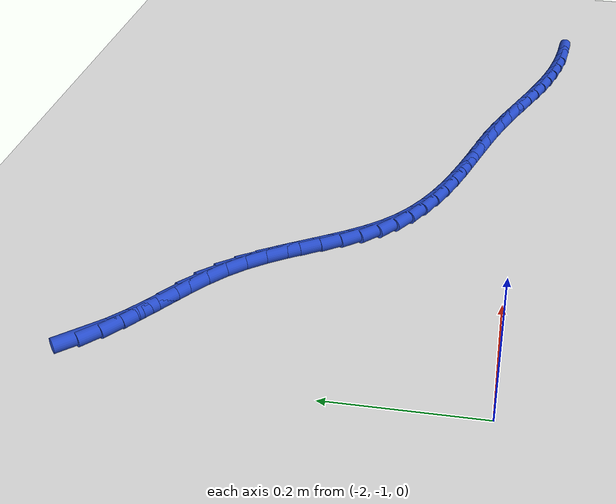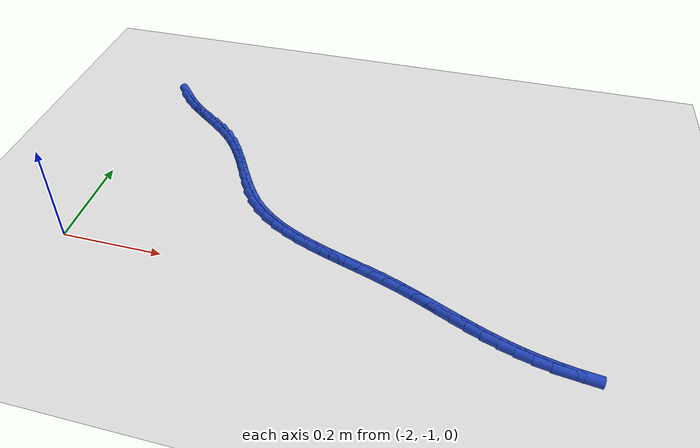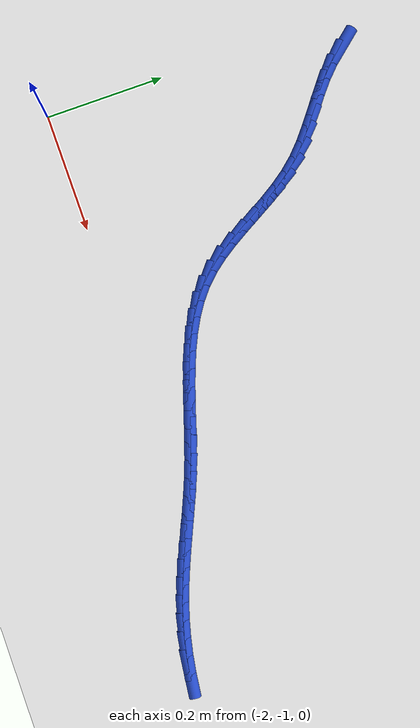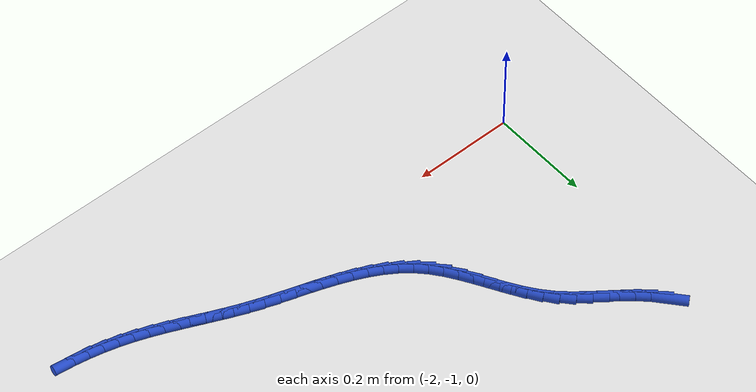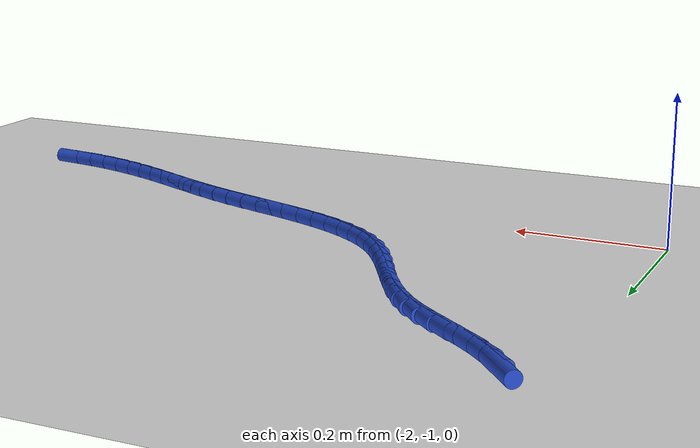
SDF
<sdf version="1.6">
 <world name="default">
  <model name="ground_plane">
   <static>1</static>
   <link name="link">
    <collision name="collision">
     <geometry><plane><normal>0 0 1</normal><size>100 100</size></plane></geometry>
     <surface><friction><ode><mu>100</mu><mu2>50</mu2></ode></friction></surface>
    </collision>
    <visual name="visual">
     <cast_shadows>0</cast_shadows>
     <geometry><plane><normal>0 0 1</normal><size>100 100</size></plane></geometry>
     <material>
      <script><uri>file://media/materials/scripts/gazebo.material</uri><name>Gazebo/WhiteGlow</name></script>
     </material>
    </visual>
   </link>
  </model>
  <model name="line">
   <link name="link_134">
    <pose>-1.945523876020781 -0.5044399242374739 0.01 0 1.57 -0.8649098657939092</pose>
    <collision name="collision">
     <geometry><cylinder><radius>0.01</radius><length>0.08</length></cylinder></geometry>
    </collision>
    <visual name="visual">
     <material>
      <script><name>Gazebo/Blue</name><uri>file://media/materials/scripts/gazebo.material</uri></script>
     </material>
     <geometry><cylinder><radius>0.01</radius><length>0.08</length></cylinder></geometry>
    </visual>
   </link>
   <link name="link_135">
    <pose>-1.9274065273554222 -0.5256944082384363 0.01 0 1.57 -0.7651148735351089</pose>
    <collision name="collision">
     <geometry><cylinder><radius>0.01</radius><length>0.08</length></cylinder></geometry>
    </collision>
    <visual name="visual">
     <material>
      <script><name>Gazebo/Blue</name><uri>file://media/materials/scripts/gazebo.material</uri></script>
     </material>
     <geometry><cylinder><radius>0.01</radius><length>0.08</length></cylinder></geometry>
    </visual>
   </link>
   <link name="link_136">
    <pose>-1.907104829177108 -0.5451888000728007 0.01 0 1.57 -0.6914414769259143</pose>
    <collision name="collision">
     <geometry><cylinder><radius>0.01</radius><length>0.08</length></cylinder></geometry>
    </collision>
    <visual name="visual">
     <material>
      <script><name>Gazebo/Blue</name><uri>file://media/materials/scripts/gazebo.material</uri></script>
     </material>
     <geometry><cylinder><radius>0.01</radius><length>0.08</length></cylinder></geometry>
    </visual>
   </link>
   <link name="link_137">
    <pose>-1.8851389407791896 -0.5633713360268057 0.01 0 1.57 -0.6546145033927468</pose>
    <collision name="collision">
     <geometry><cylinder><radius>0.01</radius><length>0.08</length></cylinder></geometry>
    </collision>
    <visual name="visual">
     <material>
      <script><name>Gazebo/Blue</name><uri>file://media/materials/scripts/gazebo.material</uri></script>
     </material>
     <geometry><cylinder><radius>0.01</radius><length>0.08</length></cylinder></geometry>
    </visual>
   </link>
   <link name="link_138">
    <pose>-1.862277465319502 -0.580917778102049 0.01 0 1.57 -0.653068136857843</pose>
    <collision name="collision">
     <geometry><cylinder><radius>0.01</radius><length>0.08</length></cylinder></geometry>
    </collision>
    <visual name="visual">
     <material>
      <script><name>Gazebo/Blue</name><uri>file://media/materials/scripts/gazebo.material</uri></script>
     </material>
     <geometry><cylinder><radius>0.01</radius><length>0.08</length></cylinder></geometry>
    </visual>
   </link>
   <link name="link_139">
    <pose>-1.8392898216489681 -0.5985046353145671 0.01 0 1.57 -0.6863191443784399</pose>
    <collision name="collision">
     <geometry><cylinder><radius>0.01</radius><length>0.08</length></cylinder></geometry>
    </collision>
    <visual name="visual">
     <material>
      <script><name>Gazebo/Blue</name><uri>file://media/materials/scripts/gazebo.material</uri></script>
     </material>
     <geometry><cylinder><radius>0.01</radius><length>0.08</length></cylinder></geometry>
    </visual>
   </link>
   <link name="link_140">
    <pose>-1.8169454286185107 -0.6168084166803957 0.01 0 1.57 -0.7550225406404976</pose>
    <collision name="collision">
     <geometry><cylinder><radius>0.01</radius><length>0.08</length></cylinder></geometry>
    </collision>
    <visual name="visual">
     <material>
      <script><name>Gazebo/Blue</name><uri>file://media/materials/scripts/gazebo.material</uri></script>
     </material>
     <geometry><cylinder><radius>0.01</radius><length>0.08</length></cylinder></geometry>
    </visual>
   </link>
   <link name="link_141">
    <pose>-1.7960137050790541 -0.6365056312155698 0.01 0 1.57 -0.855044494336317</pose>
    <collision name="collision">
     <geometry><cylinder><radius>0.01</radius><length>0.08</length></cylinder></geometry>
    </collision>
    <visual name="visual">
     <material>
      <script><name>Gazebo/Blue</name><uri>file://media/materials/scripts/gazebo.material</uri></script>
     </material>
     <geometry><cylinder><radius>0.01</radius><length>0.08</length></cylinder></geometry>
    </visual>
   </link>
   <link name="link_142">
    <pose>-1.7771659714973034 -0.6581801640192708 0.01 0 1.57 -0.9460924358139133</pose>
    <collision name="collision">
     <geometry><cylinder><radius>0.01</radius><length>0.08</length></cylinder></geometry>
    </collision>
    <visual name="visual">
     <material>
      <script><name>Gazebo/Blue</name><uri>file://media/materials/scripts/gazebo.material</uri></script>
     </material>
     <geometry><cylinder><radius>0.01</radius><length>0.08</length></cylinder></geometry>
    </visual>
   </link>
   <link name="link_143">
    <pose>-1.7602510966978318 -0.6816393461921029 0.01 0 1.57 -1.008445409772859</pose>
    <collision name="collision">
     <geometry><cylinder><radius>0.01</radius><length>0.08</length></cylinder></geometry>
    </collision>
    <visual name="visual">
     <material>
      <script><name>Gazebo/Blue</name><uri>file://media/materials/scripts/gazebo.material</uri></script>
     </material>
     <geometry><cylinder><radius>0.01</radius><length>0.08</length></cylinder></geometry>
    </visual>
   </link>
   <link name="link_144">
    <pose>-1.744707412341528 -0.706302882061628 0.01 0 1.57 -1.0430832219047415</pose>
    <collision name="collision">
     <geometry><cylinder><radius>0.01</radius><length>0.08</length></cylinder></geometry>
    </collision>
    <visual name="visual">
     <material>
      <script><name>Gazebo/Blue</name><uri>file://media/materials/scripts/gazebo.material</uri></script>
     </material>
     <geometry><cylinder><radius>0.01</radius><length>0.08</length></cylinder></geometry>
    </visual>
   </link>
   <link name="link_145">
    <pose>-1.729970224934355 -0.7315876196219331 0.01 0 1.57 -1.05089975401515</pose>
    <collision name="collision">
     <geometry><cylinder><radius>0.01</radius><length>0.08</length></cylinder></geometry>
    </collision>
    <visual name="visual">
     <material>
      <script><name>Gazebo/Blue</name><uri>file://media/materials/scripts/gazebo.material</uri></script>
     </material>
     <geometry><cylinder><radius>0.01</radius><length>0.08</length></cylinder></geometry>
    </visual>
   </link>
   <link name="link_146">
    <pose>-1.7154748409822733 -0.7569104068671083 0.01 0 1.57 -1.03181249238026</pose>
    <collision name="collision">
     <geometry><cylinder><radius>0.01</radius><length>0.08</length></cylinder></geometry>
    </collision>
    <visual name="visual">
     <material>
      <script><name>Gazebo/Blue</name><uri>file://media/materials/scripts/gazebo.material</uri></script>
     </material>
     <geometry><cylinder><radius>0.01</radius><length>0.08</length></cylinder></geometry>
    </visual>
   </link>
   <link name="link_147">
    <pose>-1.7006565669912457 -0.7816880917912419 0.01 0 1.57 -0.9845648098110397</pose>
    <collision name="collision">
     <geometry><cylinder><radius>0.01</radius><length>0.08</length></cylinder></geometry>
    </collision>
    <visual name="visual">
     <material>
      <script><name>Gazebo/Blue</name><uri>file://media/materials/scripts/gazebo.material</uri></script>
     </material>
     <geometry><cylinder><radius>0.01</radius><length>0.08</length></cylinder></geometry>
    </visual>
   </link>
   <link name="link_148">
    <pose>-1.6849507094672336 -0.8053375223884236 0.01 0 1.57 -0.9070542403104638</pose>
    <collision name="collision">
     <geometry><cylinder><radius>0.01</radius><length>0.08</length></cylinder></geometry>
    </collision>
    <visual name="visual">
     <material>
      <script><name>Gazebo/Blue</name><uri>file://media/materials/scripts/gazebo.material</uri></script>
     </material>
     <geometry><cylinder><radius>0.01</radius><length>0.08</length></cylinder></geometry>
    </visual>
   </link>
   <link name="link_149">
    <pose>-1.6677925749161995 -0.8272755466527412 0.01 0 1.57 -0.7987489031500234</pose>
    <collision name="collision">
     <geometry><cylinder><radius>0.01</radius><length>0.08</length></cylinder></geometry>
    </collision>
    <visual name="visual">
     <material>
      <script><name>Gazebo/Blue</name><uri>file://media/materials/scripts/gazebo.material</uri></script>
     </material>
     <geometry><cylinder><radius>0.01</radius><length>0.08</length></cylinder></geometry>
    </visual>
   </link>
   <link name="link_150">
    <pose>-1.6486416611386134 -0.8469447687568233 0.01 0 1.57 -0.6831744442015925</pose>
    <collision name="collision">
     <geometry><cylinder><radius>0.01</radius><length>0.08</length></cylinder></geometry>
    </collision>
    <visual name="visual">
     <material>
      <script><name>Gazebo/Blue</name><uri>file://media/materials/scripts/gazebo.material</uri></script>
     </material>
     <geometry><cylinder><radius>0.01</radius><length>0.08</length></cylinder></geometry>
    </visual>
   </link>
   <link name="link_151">
    <pose>-1.627386659851505 -0.8642447504428619 0.01 0 1.57 -0.5826330720781444</pose>
    <collision name="collision">
     <geometry><cylinder><radius>0.01</radius><length>0.08</length></cylinder></geometry>
    </collision>
    <visual name="visual">
     <material>
      <script><name>Gazebo/Blue</name><uri>file://media/materials/scripts/gazebo.material</uri></script>
     </material>
     <geometry><cylinder><radius>0.01</radius><length>0.08</length></cylinder></geometry>
    </visual>
   </link>
   <link name="link_152">
    <pose>-1.6042848112406891 -0.8794674425481954 0.01 0 1.57 -0.4989895952894923</pose>
    <collision name="collision">
     <geometry><cylinder><radius>0.01</radius><length>0.08</length></cylinder></geometry>
    </collision>
    <visual name="visual">
     <material>
      <script><name>Gazebo/Blue</name><uri>file://media/materials/scripts/gazebo.material</uri></script>
     </material>
     <geometry><cylinder><radius>0.01</radius><length>0.08</length></cylinder></geometry>
    </visual>
   </link>
   <link name="link_153">
    <pose>-1.5796053293930776 -0.892917544377775 0.01 0 1.57 -0.4320205388586078</pose>
    <collision name="collision">
     <geometry><cylinder><radius>0.01</radius><length>0.08</length></cylinder></geometry>
    </collision>
    <visual name="visual">
     <material>
      <script><name>Gazebo/Blue</name><uri>file://media/materials/scripts/gazebo.material</uri></script>
     </material>
     <geometry><cylinder><radius>0.01</radius><length>0.08</length></cylinder></geometry>
    </visual>
   </link>
   <link name="link_154">
    <pose>-1.553617428395586 -0.9048997552365514 0.01 0 1.57 -0.3807671598649935</pose>
    <collision name="collision">
     <geometry><cylinder><radius>0.01</radius><length>0.08</length></cylinder></geometry>
    </collision>
    <visual name="visual">
     <material>
      <script><name>Gazebo/Blue</name><uri>file://media/materials/scripts/gazebo.material</uri></script>
     </material>
     <geometry><cylinder><radius>0.01</radius><length>0.08</length></cylinder></geometry>
    </visual>
   </link>
   <link name="link_155">
    <pose>-1.5265903223351285 -0.9157187744294761 0.01 0 1.57 -0.34407617342270724</pose>
    <collision name="collision">
     <geometry><cylinder><radius>0.01</radius><length>0.08</length></cylinder></geometry>
    </collision>
    <visual name="visual">
     <material>
      <script><name>Gazebo/Blue</name><uri>file://media/materials/scripts/gazebo.material</uri></script>
     </material>
     <geometry><cylinder><radius>0.01</radius><length>0.08</length></cylinder></geometry>
    </visual>
   </link>
   <link name="link_156">
    <pose>-1.4987932252986174 -0.9256793012615002 0.01 0 1.57 -0.32092688221206833</pose>
    <collision name="collision">
     <geometry><cylinder><radius>0.01</radius><length>0.08</length></cylinder></geometry>
    </collision>
    <visual name="visual">
     <material>
      <script><name>Gazebo/Blue</name><uri>file://media/materials/scripts/gazebo.material</uri></script>
     </material>
     <geometry><cylinder><radius>0.01</radius><length>0.08</length></cylinder></geometry>
    </visual>
   </link>
   <link name="link_157">
    <pose>-1.4704953513729655 -0.9350860350375743 0.01 0 1.57 -0.3105999684093135</pose>
    <collision name="collision">
     <geometry><cylinder><radius>0.01</radius><length>0.08</length></cylinder></geometry>
    </collision>
    <visual name="visual">
     <material>
      <script><name>Gazebo/Blue</name><uri>file://media/materials/scripts/gazebo.material</uri></script>
     </material>
     <geometry><cylinder><radius>0.01</radius><length>0.08</length></cylinder></geometry>
    </visual>
   </link>
   <link name="link_158">
    <pose>-1.4419659146450892 -0.9442436750626501 0.01 0 1.57 -0.3127523677853453</pose>
    <collision name="collision">
     <geometry><cylinder><radius>0.01</radius><length>0.08</length></cylinder></geometry>
    </collision>
    <visual name="visual">
     <material>
      <script><name>Gazebo/Blue</name><uri>file://media/materials/scripts/gazebo.material</uri></script>
     </material>
     <geometry><cylinder><radius>0.01</radius><length>0.08</length></cylinder></geometry>
    </visual>
   </link>
   <link name="link_159">
    <pose>-1.4134741292019002 -0.9534569206416778 0.01 0 1.57 -0.3274419925402473</pose>
    <collision name="collision">
     <geometry><cylinder><radius>0.01</radius><length>0.08</length></cylinder></geometry>
    </collision>
    <visual name="visual">
     <material>
      <script><name>Gazebo/Blue</name><uri>file://media/materials/scripts/gazebo.material</uri></script>
     </material>
     <geometry><cylinder><radius>0.01</radius><length>0.08</length></cylinder></geometry>
    </visual>
   </link>
   <link name="link_160">
    <pose>-1.385289209130313 -0.963030471079609 0.01 0 1.57 -0.3548665509379763</pose>
    <collision name="collision">
     <geometry><cylinder><radius>0.01</radius><length>0.08</length></cylinder></geometry>
    </collision>
    <visual name="visual">
     <material>
      <script><name>Gazebo/Blue</name><uri>file://media/materials/scripts/gazebo.material</uri></script>
     </material>
     <geometry><cylinder><radius>0.01</radius><length>0.08</length></cylinder></geometry>
    </visual>
   </link>
   <link name="link_161">
    <pose>-1.3576754937362965 -0.9732628258630985 0.01 0 1.57 -0.3857728984942216</pose>
    <collision name="collision">
     <geometry><cylinder><radius>0.01</radius><length>0.08</length></cylinder></geometry>
    </collision>
    <visual name="visual">
     <material>
      <script><name>Gazebo/Blue</name><uri>file://media/materials/scripts/gazebo.material</uri></script>
     </material>
     <geometry><cylinder><radius>0.01</radius><length>0.08</length></cylinder></geometry>
    </visual>
   </link>
   <link name="link_162">
    <pose>-1.3307099190185931 -0.9842141421889361 0.01 0 1.57 -0.40720604581496045</pose>
    <collision name="collision">
     <geometry><cylinder><radius>0.01</radius><length>0.08</length></cylinder></geometry>
    </collision>
    <visual name="visual">
     <material>
      <script><name>Gazebo/Blue</name><uri>file://media/materials/scripts/gazebo.material</uri></script>
     </material>
     <geometry><cylinder><radius>0.01</radius><length>0.08</length></cylinder></geometry>
    </visual>
   </link>
   <link name="link_163">
    <pose>-1.3042271875893015 -0.9956365012604328 0.01 0 1.57 -0.4178713662107583</pose>
    <collision name="collision">
     <geometry><cylinder><radius>0.01</radius><length>0.08</length></cylinder></geometry>
    </collision>
    <visual name="visual">
     <material>
      <script><name>Gazebo/Blue</name><uri>file://media/materials/scripts/gazebo.material</uri></script>
     </material>
     <geometry><cylinder><radius>0.01</radius><length>0.08</length></cylinder></geometry>
    </visual>
   </link>
   <link name="link_164">
    <pose>-1.2780459343535877 -1.007261549134266 0.01 0 1.57 -0.41747602100286546</pose>
    <collision name="collision">
     <geometry><cylinder><radius>0.01</radius><length>0.08</length></cylinder></geometry>
    </collision>
    <visual name="visual">
     <material>
      <script><name>Gazebo/Blue</name><uri>file://media/materials/scripts/gazebo.material</uri></script>
     </material>
     <geometry><cylinder><radius>0.01</radius><length>0.08</length></cylinder></geometry>
    </visual>
   </link>
   <link name="link_165">
    <pose>-1.2519847942166193 -1.0188209318671149 0.01 0 1.57 -0.40586332057265667</pose>
    <collision name="collision">
     <geometry><cylinder><radius>0.01</radius><length>0.08</length></cylinder></geometry>
    </collision>
    <visual name="visual">
     <material>
      <script><name>Gazebo/Blue</name><uri>file://media/materials/scripts/gazebo.material</uri></script>
     </material>
     <geometry><cylinder><radius>0.01</radius><length>0.08</length></cylinder></geometry>
    </visual>
   </link>
   <link name="link_166">
    <pose>-1.225862402083563 -1.0300462955156573 0.01 0 1.57 -0.3830211171766226</pose>
    <collision name="collision">
     <geometry><cylinder><radius>0.01</radius><length>0.08</length></cylinder></geometry>
    </collision>
    <visual name="visual">
     <material>
      <script><name>Gazebo/Blue</name><uri>file://media/materials/scripts/gazebo.material</uri></script>
     </material>
     <geometry><cylinder><radius>0.01</radius><length>0.08</length></cylinder></geometry>
    </visual>
   </link>
   <link name="link_167">
    <pose>-1.1994973928595871 -1.0406692861365707 0.01 0 1.57 -0.34912742790801227</pose>
    <collision name="collision">
     <geometry><cylinder><radius>0.01</radius><length>0.08</length></cylinder></geometry>
    </collision>
    <visual name="visual">
     <material>
      <script><name>Gazebo/Blue</name><uri>file://media/materials/scripts/gazebo.material</uri></script>
     </material>
     <geometry><cylinder><radius>0.01</radius><length>0.08</length></cylinder></geometry>
    </visual>
   </link>
   <link name="link_168">
    <pose>-1.1727084014498577 -1.0504215497865341 0.01 0 1.57 -0.30524946517364704</pose>
    <collision name="collision">
     <geometry><cylinder><radius>0.01</radius><length>0.08</length></cylinder></geometry>
    </collision>
    <visual name="visual">
     <material>
      <script><name>Gazebo/Blue</name><uri>file://media/materials/scripts/gazebo.material</uri></script>
     </material>
     <geometry><cylinder><radius>0.01</radius><length>0.08</length></cylinder></geometry>
    </visual>
   </link>
   <link name="link_169">
    <pose>-1.1453302158555598 -1.0590483459418545 0.01 0 1.57 -0.25828337990760775</pose>
    <collision name="collision">
     <geometry><cylinder><radius>0.01</radius><length>0.08</length></cylinder></geometry>
    </collision>
    <visual name="visual">
     <material>
      <script><name>Gazebo/Blue</name><uri>file://media/materials/scripts/gazebo.material</uri></script>
     </material>
     <geometry><cylinder><radius>0.01</radius><length>0.08</length></cylinder></geometry>
    </visual>
   </link>
   <link name="link_170">
    <pose>-1.1173652909236698 -1.0664362394439013 0.01 0 1.57 -0.2118616206157166</pose>
    <collision name="collision">
     <geometry><cylinder><radius>0.01</radius><length>0.08</length></cylinder></geometry>
    </collision>
    <visual name="visual">
     <material>
      <script><name>Gazebo/Blue</name><uri>file://media/materials/scripts/gazebo.material</uri></script>
     </material>
     <geometry><cylinder><radius>0.01</radius><length>0.08</length></cylinder></geometry>
    </visual>
   </link>
   <link name="link_171">
    <pose>-1.08891541089643 -1.072555507429061 0.01 0 1.57 -0.1657129814843045</pose>
    <collision name="collision">
     <geometry><cylinder><radius>0.01</radius><length>0.08</length></cylinder></geometry>
    </collision>
    <visual name="visual">
     <material>
      <script><name>Gazebo/Blue</name><uri>file://media/materials/scripts/gazebo.material</uri></script>
     </material>
     <geometry><cylinder><radius>0.01</radius><length>0.08</length></cylinder></geometry>
    </visual>
   </link>
   <link name="link_172">
    <pose>-1.0600836600078043 -1.07737752263377 0.01 0 1.57 -0.11952613738281707</pose>
    <collision name="collision">
     <geometry><cylinder><radius>0.01</radius><length>0.08</length></cylinder></geometry>
    </collision>
    <visual name="visual">
     <material>
      <script><name>Gazebo/Blue</name><uri>file://media/materials/scripts/gazebo.material</uri></script>
     </material>
     <geometry><cylinder><radius>0.01</radius><length>0.08</length></cylinder></geometry>
    </visual>
   </link>
  </model>
 </world>
</sdf>
